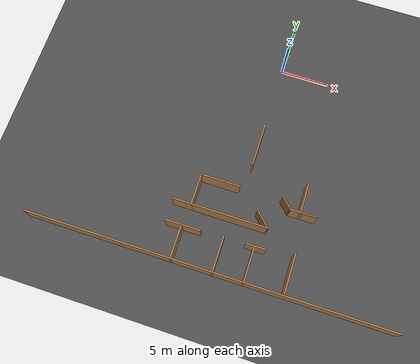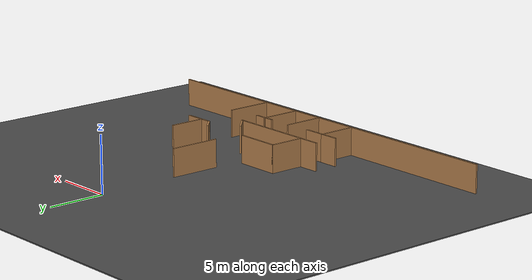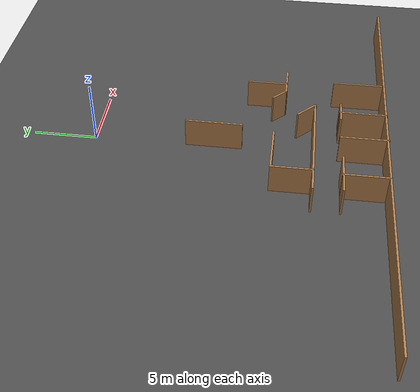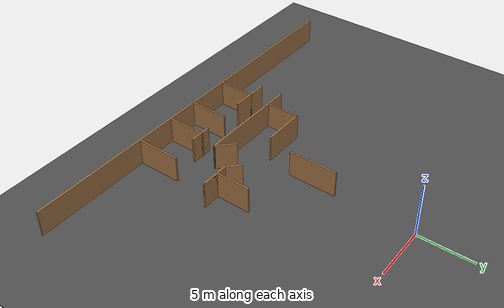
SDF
<sdf version="1.6">
 <world name="default">
  <model name="ground_plane">
   <static>1</static>
   <link name="link">
    <collision name="collision">
     <geometry><plane><normal>0 0 1</normal><size>100 100</size></plane></geometry>
     <surface><friction><ode><mu>100</mu><mu2>50</mu2></ode></friction></surface>
    </collision>
    <visual name="visual">
     <cast_shadows>0</cast_shadows>
     <geometry><plane><normal>0 0 1</normal><size>100 100</size></plane></geometry>
     <material>
      <script><uri>file://media/materials/scripts/gazebo.material</uri><name>Gazebo/Grey</name></script>
     </material>
    </visual>
   </link>
  </model>
  <model name="asphalt_plane">
   <static>1</static>
   <link name="link">
    <collision name="collision"><geometry><box><size>100 100 0.1</size></box></geometry></collision>
    <visual name="visual">
     <cast_shadows>0</cast_shadows>
     <geometry><box><size>100 100 0.1</size></box></geometry>
     <material>
      <script>
       <uri>model://asphalt_plane/materials/scripts</uri>
       <uri>model://asphalt_plane/materials/textures</uri>
       <name>vrc/asphalt</name>
      </script>
     </material>
    </visual>
   </link>
  </model>
  <model name="Soft_wall_v1_1">
   <pose>-14.3408 -3.86286 0 0 -0 0</pose>
   <link name="Wall_234">
    <collision name="Wall_234_Collision">
     <geometry><box><size>7.75 0.15 2.5</size></box></geometry>
     <pose>0 0 1.25 0 -0 0</pose>
    </collision>
    <visual name="Wall_234_Visual">
     <pose>0 0 1.25 0 -0 0</pose>
     <geometry><box><size>7.75 0.15 2.5</size></box></geometry>
     <material>
      <script><uri>file://media/materials/scripts/gazebo.material</uri><name>Gazebo/Wood</name></script>
      <ambient>1 1 1 1</ambient>
     </material>
     <meta><layer>0</layer></meta>
    </visual>
    <pose>13.7458 -13.5128 0 0 -0 3.14159</pose>
   </link>
   <link name="Wall_235">
    <collision name="Wall_235_Collision">
     <geometry><box><size>3.25 0.15 2.5</size></box></geometry>
     <pose>0 0 1.25 0 -0 0</pose>
    </collision>
    <visual name="Wall_235_Visual">
     <pose>0 0 1.25 0 -0 0</pose>
     <geometry><box><size>3.25 0.15 2.5</size></box></geometry>
     <material>
      <script><uri>file://media/materials/scripts/gazebo.material</uri><name>Gazebo/Wood</name></script>
      <ambient>1 1 1 1</ambient>
     </material>
     <meta><layer>0</layer></meta>
    </visual>
    <pose>9.94576 -11.9628 0 0 -0 1.5708</pose>
   </link>
   <link name="Wall_236">
    <collision name="Wall_236_Collision">
     <geometry><box><size>4 0.15 2.5</size></box></geometry>
     <pose>0 0 1.25 0 -0 0</pose>
    </collision>
    <visual name="Wall_236_Visual">
     <pose>0 0 1.25 0 -0 0</pose>
     <geometry><box><size>4 0.15 2.5</size></box></geometry>
     <material>
      <script><uri>file://media/materials/scripts/gazebo.material</uri><name>Gazebo/Wood</name></script>
      <ambient>1 1 1 1</ambient>
     </material>
     <meta><layer>0</layer></meta>
    </visual>
    <pose>11.8708 -10.4128 0 0 -0 0</pose>
   </link>
   <link name="Wall_238">
    <collision name="Wall_238_Collision">
     <geometry><box><size>2 0.15 2.5</size></box></geometry>
     <pose>0 0 1.25 0 -0 0</pose>
    </collision>
    <visual name="Wall_238_Visual">
     <pose>0 0 1.25 0 -0 0</pose>
     <geometry><box><size>2 0.15 2.5</size></box></geometry>
     <material>
      <script><uri>file://media/materials/scripts/gazebo.material</uri><name>Gazebo/Wood</name></script>
      <ambient>1 1 1 1</ambient>
     </material>
     <meta><layer>0</layer></meta>
    </visual>
    <pose>16.8917 -12.8587 0 0 -0 2.35619</pose>
   </link>
   <link name="Wall_249">
    <collision name="Wall_249_Collision">
     <geometry><box><size>2 0.15 2.5</size></box></geometry>
     <pose>0 0 1.25 0 -0 0</pose>
    </collision>
    <visual name="Wall_249_Visual">
     <pose>0 0 1.25 0 -0 0</pose>
     <geometry><box><size>2 0.15 2.5</size></box></geometry>
     <material>
      <script><uri>file://media/materials/scripts/gazebo.material</uri><name>Gazebo/Wood</name></script>
      <ambient>1 1 1 1</ambient>
     </material>
     <meta><layer>0</layer></meta>
    </visual>
    <pose>9.02075 -13.5128 0 0 -0 3.14159</pose>
   </link>
   <link name="Wall_26">
    <collision name="Wall_26_Collision">
     <geometry><box><size>36.75 0.15 2.5</size></box></geometry>
     <pose>0 0 1.25 0 -0 0</pose>
    </collision>
    <visual name="Wall_26_Visual">
     <pose>0 0 1.25 0 -0 0</pose>
     <geometry><box><size>36.75 0.15 2.5</size></box></geometry>
     <material>
      <script><uri>file://media/materials/scripts/gazebo.material</uri><name>Gazebo/Wood</name></script>
      <ambient>1 1 1 1</ambient>
     </material>
     <meta><layer>0</layer></meta>
    </visual>
    <pose>13.3466 -19.0514 0 0 -0 0</pose>
   </link>
   <link name="Wall_34">
    <collision name="Wall_34_Collision">
     <geometry><box><size>4 0.15 2.5</size></box></geometry>
     <pose>0 0 1.25 0 -0 0</pose>
    </collision>
    <visual name="Wall_34_Visual">
     <pose>0 0 1.25 0 -0 0</pose>
     <geometry><box><size>4 0.15 2.5</size></box></geometry>
     <material>
      <script><uri>file://media/materials/scripts/gazebo.material</uri><name>Gazebo/Wood</name></script>
      <ambient>1 1 1 1</ambient>
     </material>
     <meta><layer>0</layer></meta>
    </visual>
    <pose>20.7066 -16.9526 0 0 0 -1.5708</pose>
   </link>
   <link name="Wall_39">
    <collision name="Wall_39_Collision">
     <geometry><box><size>2 0.15 2.5</size></box></geometry>
     <pose>0 0 1.25 0 -0 0</pose>
    </collision>
    <visual name="Wall_39_Visual">
     <pose>0 0 1.25 0 -0 0</pose>
     <geometry><box><size>2 0.15 2.5</size></box></geometry>
     <material>
      <script><uri>file://media/materials/scripts/gazebo.material</uri><name>Gazebo/Wood</name></script>
      <ambient>1 1 1 1</ambient>
     </material>
     <meta><layer>0</layer></meta>
    </visual>
    <pose>16.9837 -15.5301 0 0 -0 3.14159</pose>
   </link>
   <link name="Wall_43">
    <collision name="Wall_43_Collision">
     <geometry><box><size>3.75 0.15 2.5</size></box></geometry>
     <pose>0 0 1.25 0 -0 0</pose>
    </collision>
    <visual name="Wall_43_Visual">
     <pose>0 0 1.25 0 -0 0</pose>
     <geometry><box><size>3.75 0.15 2.5</size></box></geometry>
     <material>
      <script><uri>file://media/materials/scripts/gazebo.material</uri><name>Gazebo/Wood</name></script>
      <ambient>1 1 1 1</ambient>
     </material>
     <meta><layer>0</layer></meta>
    </visual>
    <pose>16.8679 -17.2949 0 0 -0 1.5708</pose>
   </link>
   <link name="Wall_47">
    <collision name="Wall_47_Collision">
     <geometry><box><size>3.75 0.15 2.5</size></box></geometry>
     <pose>0 0 1.25 0 -0 0</pose>
    </collision>
    <visual name="Wall_47_Visual">
     <pose>0 0 1.25 0 -0 0</pose>
     <geometry><box><size>3.75 0.15 2.5</size></box></geometry>
     <material>
      <script><uri>file://media/materials/scripts/gazebo.material</uri><name>Gazebo/Wood</name></script>
      <ambient>1 1 1 1</ambient>
     </material>
     <meta><layer>0</layer></meta>
    </visual>
    <pose>13.8443 -17.3154 0 0 -0 1.5708</pose>
   </link>
   <link name="Wall_50">
    <collision name="Wall_50_Collision">
     <geometry><box><size>3.5 0.15 2.5</size></box></geometry>
     <pose>0 0 1.25 0 -0 0</pose>
    </collision>
    <visual name="Wall_50_Visual">
     <pose>0 0 1.25 0 -0 0</pose>
     <geometry><box><size>3.5 0.15 2.5</size></box></geometry>
     <material>
      <script><uri>file://media/materials/scripts/gazebo.material</uri><name>Gazebo/Wood</name></script>
      <ambient>1 1 1 1</ambient>
     </material>
     <meta><layer>0</layer></meta>
    </visual>
    <pose>9.72195 -17.3789 0 0 -0 1.5708</pose>
   </link>
   <link name="Wall_51">
    <collision name="Wall_51_Collision">
     <geometry><box><size>2 0.15 2.5</size></box></geometry>
     <pose>0 0 1.25 0 -0 0</pose>
    </collision>
    <visual name="Wall_51_Visual">
     <pose>0 0 1.25 0 -0 0</pose>
     <geometry><box><size>2 0.15 2.5</size></box></geometry>
     <material>
      <script><uri>file://media/materials/scripts/gazebo.material</uri><name>Gazebo/Wood</name></script>
      <ambient>1 1 1 1</ambient>
     </material>
     <meta><layer>0</layer></meta>
    </visual>
    <pose>10.647 -15.7039 0 0 -0 0</pose>
   </link>
   <link name="Wall_53">
    <collision name="Wall_53_Collision">
     <geometry><box><size>1.75 0.15 2.5</size></box></geometry>
     <pose>0 0 1.25 0 -0 0</pose>
    </collision>
    <visual name="Wall_53_Visual">
     <pose>0 0 1.25 0 -0 0</pose>
     <geometry><box><size>1.75 0.15 2.5</size></box></geometry>
     <material>
      <script><uri>file://media/materials/scripts/gazebo.material</uri><name>Gazebo/Wood</name></script>
      <ambient>1 1 1 1</ambient>
     </material>
     <meta><layer>0</layer></meta>
    </visual>
    <pose>8.92195 -15.7039 0 0 -0 3.14159</pose>
   </link>
   <link name="Wall_70">
    <collision name="Wall_70_Collision">
     <geometry><box><size>4.5 0.15 2.5</size></box></geometry>
     <pose>0 0 1.25 0 -0 0</pose>
    </collision>
    <visual name="Wall_70_Visual">
     <pose>0 0 1.25 0 -0 0</pose>
     <geometry><box><size>4.5 0.15 2.5</size></box></geometry>
     <material>
      <script><uri>file://media/materials/scripts/gazebo.material</uri><name>Gazebo/Wood</name></script>
      <ambient>1 1 1 1</ambient>
     </material>
     <meta><layer>0</layer></meta>
    </visual>
    <pose>14.386 -5.7165 0 0 -0 1.5708</pose>
   </link>
   <link name="Wall_80">
    <collision name="Wall_80_Collision">
     <geometry><box><size>3.25 0.15 2.5</size></box></geometry>
     <pose>0 0 1.25 0 -0 0</pose>
    </collision>
    <visual name="Wall_80_Visual">
     <pose>0 0 1.25 0 -0 0</pose>
     <geometry><box><size>3.25 0.15 2.5</size></box></geometry>
     <material>
      <script><uri>file://media/materials/scripts/gazebo.material</uri><name>Gazebo/Wood</name></script>
      <ambient>1 1 1 1</ambient>
     </material>
     <meta><layer>0</layer></meta>
    </visual>
    <pose>20.1084 -9.5485 0 0 0 -1.5708</pose>
   </link>
   <link name="Wall_81">
    <collision name="Wall_81_Collision">
     <geometry><box><size>1.75 0.15 2.5</size></box></geometry>
     <pose>0 0 1.25 0 -0 0</pose>
    </collision>
    <visual name="Wall_81_Visual">
     <pose>0 0 1.25 0 -0 0</pose>
     <geometry><box><size>1.75 0.15 2.5</size></box></geometry>
     <material>
      <script><uri>file://media/materials/scripts/gazebo.material</uri><name>Gazebo/Wood</name></script>
      <ambient>1 1 1 1</ambient>
     </material>
     <meta><layer>0</layer></meta>
    </visual>
    <pose>20.9084 -11.0985 0 0 -0 0</pose>
   </link>
   <link name="Wall_82">
    <collision name="Wall_82_Collision">
     <geometry><box><size>2.75 0.15 2.5</size></box></geometry>
     <pose>0 0 1.25 0 -0 0</pose>
    </collision>
    <visual name="Wall_82_Visual">
     <pose>0 0 1.25 0 -0 0</pose>
     <geometry><box><size>2.75 0.15 2.5</size></box></geometry>
     <material>
      <script><uri>file://media/materials/scripts/gazebo.material</uri><name>Gazebo/Wood</name></script>
      <ambient>1 1 1 1</ambient>
     </material>
     <meta><layer>0</layer></meta>
    </visual>
    <pose>20.4084 -11.0985 0 0 -0 3.14159</pose>
   </link>
   <link name="Wall_83">
    <collision name="Wall_83_Collision">
     <geometry><box><size>1.5 0.15 2.5</size></box></geometry>
     <pose>0 0 1.25 0 -0 0</pose>
    </collision>
    <visual name="Wall_83_Visual">
     <pose>0 0 1.25 0 -0 0</pose>
     <geometry><box><size>1.5 0.15 2.5</size></box></geometry>
     <material>
      <script><uri>file://media/materials/scripts/gazebo.material</uri><name>Gazebo/Wood</name></script>
      <ambient>1 1 1 1</ambient>
     </material>
     <meta><layer>0</layer></meta>
    </visual>
    <pose>18.6311 -10.6212 0 0 -0 2.35619</pose>
   </link>
   <static>1</static>
  </model>
 </world>
</sdf>
